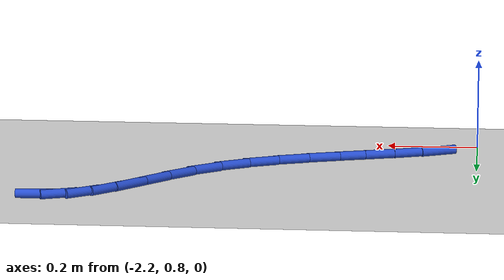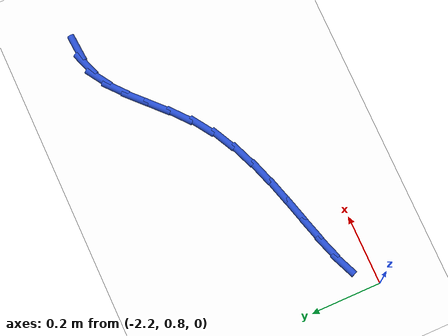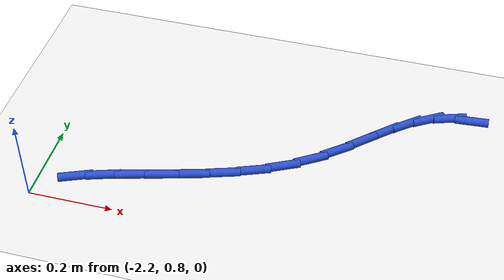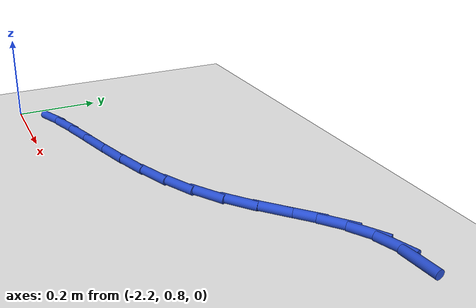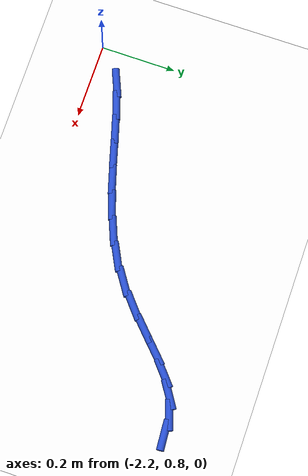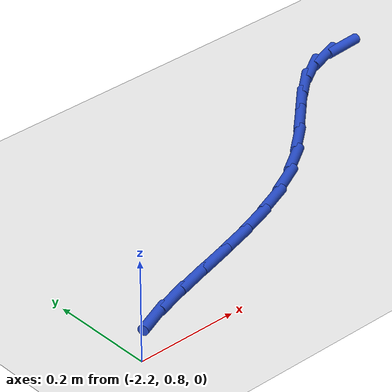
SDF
<sdf version="1.6">
 <world name="default">
  <model name="ground_plane">
   <static>1</static>
   <link name="link">
    <collision name="collision">
     <geometry><plane><normal>0 0 1</normal><size>100 100</size></plane></geometry>
     <surface><friction><ode><mu>100</mu><mu2>50</mu2></ode></friction></surface>
    </collision>
    <visual name="visual">
     <cast_shadows>0</cast_shadows>
     <geometry><plane><normal>0 0 1</normal><size>100 100</size></plane></geometry>
     <material>
      <script><uri>file://media/materials/scripts/gazebo.material</uri><name>Gazebo/WhiteGlow</name></script>
     </material>
    </visual>
   </link>
  </model>
  <model name="line">
   <link name="link_30">
    <pose>-1.2675640985776069 1.2836498274218622 0.01 0 1.57 0.07085154725491648</pose>
    <collision name="collision">
     <geometry><cylinder><radius>0.01</radius><length>0.08</length></cylinder></geometry>
    </collision>
    <visual name="visual">
     <material>
      <script><name>Gazebo/Blue</name><uri>file://media/materials/scripts/gazebo.material</uri></script>
     </material>
     <geometry><cylinder><radius>0.01</radius><length>0.08</length></cylinder></geometry>
    </visual>
   </link>
   <link name="link_31">
    <pose>-1.319588341452094 1.279957649077441 0.01 0 1.57 0.3359471753485001</pose>
    <collision name="collision">
     <geometry><cylinder><radius>0.01</radius><length>0.08</length></cylinder></geometry>
    </collision>
    <visual name="visual">
     <material>
      <script><name>Gazebo/Blue</name><uri>file://media/materials/scripts/gazebo.material</uri></script>
     </material>
     <geometry><cylinder><radius>0.01</radius><length>0.08</length></cylinder></geometry>
    </visual>
   </link>
   <link name="link_32">
    <pose>-1.3688748873476457 1.2627476040577161 0.01 0 1.57 0.5686708357813681</pose>
    <collision name="collision">
     <geometry><cylinder><radius>0.01</radius><length>0.08</length></cylinder></geometry>
    </collision>
    <visual name="visual">
     <material>
      <script><name>Gazebo/Blue</name><uri>file://media/materials/scripts/gazebo.material</uri></script>
     </material>
     <geometry><cylinder><radius>0.01</radius><length>0.08</length></cylinder></geometry>
    </visual>
   </link>
   <link name="link_33">
    <pose>-1.4158507625759402 1.2327255614048152 0.01 0 1.57 0.7045740944380736</pose>
    <collision name="collision">
     <geometry><cylinder><radius>0.01</radius><length>0.08</length></cylinder></geometry>
    </collision>
    <visual name="visual">
     <material>
      <script><name>Gazebo/Blue</name><uri>file://media/materials/scripts/gazebo.material</uri></script>
     </material>
     <geometry><cylinder><radius>0.01</radius><length>0.08</length></cylinder></geometry>
    </visual>
   </link>
   <link name="link_34">
    <pose>-1.4619225278792578 1.1935582093793553 0.01 0 1.57 0.7615658787307672</pose>
    <collision name="collision">
     <geometry><cylinder><radius>0.01</radius><length>0.08</length></cylinder></geometry>
    </collision>
    <visual name="visual">
     <material>
      <script><name>Gazebo/Blue</name><uri>file://media/materials/scripts/gazebo.material</uri></script>
     </material>
     <geometry><cylinder><radius>0.01</radius><length>0.08</length></cylinder></geometry>
    </visual>
   </link>
   <link name="link_35">
    <pose>-1.5085572108657632 1.1490950082334153 0.01 0 1.57 0.7562754342936449</pose>
    <collision name="collision">
     <geometry><cylinder><radius>0.01</radius><length>0.08</length></cylinder></geometry>
    </collision>
    <visual name="visual">
     <material>
      <script><name>Gazebo/Blue</name><uri>file://media/materials/scripts/gazebo.material</uri></script>
     </material>
     <geometry><cylinder><radius>0.01</radius><length>0.08</length></cylinder></geometry>
    </visual>
   </link>
   <link name="link_36">
    <pose>-1.5572218391436183 1.1031854182190752 0.01 0 1.57 0.6951739122457233</pose>
    <collision name="collision">
     <geometry><cylinder><radius>0.01</radius><length>0.08</length></cylinder></geometry>
    </collision>
    <visual name="visual">
     <material>
      <script><name>Gazebo/Blue</name><uri>file://media/materials/scripts/gazebo.material</uri></script>
     </material>
     <geometry><cylinder><radius>0.01</radius><length>0.08</length></cylinder></geometry>
    </visual>
   </link>
   <link name="link_37">
    <pose>-1.609383440320988 1.059678899588414 0.01 0 1.57 0.5821399783219899</pose>
    <collision name="collision">
     <geometry><cylinder><radius>0.01</radius><length>0.08</length></cylinder></geometry>
    </collision>
    <visual name="visual">
     <material>
      <script><name>Gazebo/Blue</name><uri>file://media/materials/scripts/gazebo.material</uri></script>
     </material>
     <geometry><cylinder><radius>0.01</radius><length>0.08</length></cylinder></geometry>
    </visual>
   </link>
   <link name="link_38">
    <pose>-1.6663687277115582 1.0221693996456156 0.01 0 1.57 0.46574459373892546</pose>
    <collision name="collision">
     <geometry><cylinder><radius>0.01</radius><length>0.08</length></cylinder></geometry>
    </collision>
    <visual name="visual">
     <material>
      <script><name>Gazebo/Blue</name><uri>file://media/materials/scripts/gazebo.material</uri></script>
     </material>
     <geometry><cylinder><radius>0.01</radius><length>0.08</length></cylinder></geometry>
    </visual>
   </link>
   <link name="link_39">
    <pose>-1.7278625958742477 0.9912611065152407 0.01 0 1.57 0.3777263086328981</pose>
    <collision name="collision">
     <geometry><cylinder><radius>0.01</radius><length>0.08</length></cylinder></geometry>
    </collision>
    <visual name="visual">
     <material>
      <script><name>Gazebo/Blue</name><uri>file://media/materials/scripts/gazebo.material</uri></script>
     </material>
     <geometry><cylinder><radius>0.01</radius><length>0.08</length></cylinder></geometry>
    </visual>
   </link>
   <link name="link_40">
    <pose>-1.7924856151770943 0.9656200692851692 0.01 0 1.57 0.31661750195074645</pose>
    <collision name="collision">
     <geometry><cylinder><radius>0.01</radius><length>0.08</length></cylinder></geometry>
    </collision>
    <visual name="visual">
     <material>
      <script><name>Gazebo/Blue</name><uri>file://media/materials/scripts/gazebo.material</uri></script>
     </material>
     <geometry><cylinder><radius>0.01</radius><length>0.08</length></cylinder></geometry>
    </visual>
   </link>
   <link name="link_41">
    <pose>-1.858840387331107 0.9438796160397314 0.01 0 1.57 0.28041259467490665</pose>
    <collision name="collision">
     <geometry><cylinder><radius>0.01</radius><length>0.08</length></cylinder></geometry>
    </collision>
    <visual name="visual">
     <material>
      <script><name>Gazebo/Blue</name><uri>file://media/materials/scripts/gazebo.material</uri></script>
     </material>
     <geometry><cylinder><radius>0.01</radius><length>0.08</length></cylinder></geometry>
    </visual>
   </link>
   <link name="link_42">
    <pose>-1.925529514047294 0.9246730748632576 0.01 0 1.57 0.2682546916311831</pose>
    <collision name="collision">
     <geometry><cylinder><radius>0.01</radius><length>0.08</length></cylinder></geometry>
    </collision>
    <visual name="visual">
     <material>
      <script><name>Gazebo/Blue</name><uri>file://media/materials/scripts/gazebo.material</uri></script>
     </material>
     <geometry><cylinder><radius>0.01</radius><length>0.08</length></cylinder></geometry>
    </visual>
   </link>
   <link name="link_43">
    <pose>-1.991155597036664 0.9066337738400773 0.01 0 1.57 0.28109894987766615</pose>
    <collision name="collision">
     <geometry><cylinder><radius>0.01</radius><length>0.08</length></cylinder></geometry>
    </collision>
    <visual name="visual">
     <material>
      <script><name>Gazebo/Blue</name><uri>file://media/materials/scripts/gazebo.material</uri></script>
     </material>
     <geometry><cylinder><radius>0.01</radius><length>0.08</length></cylinder></geometry>
    </visual>
   </link>
   <link name="link_44">
    <pose>-2.0543212380102234 0.8883950410545205 0.01 0 1.57 0.322290228003805</pose>
    <collision name="collision">
     <geometry><cylinder><radius>0.01</radius><length>0.08</length></cylinder></geometry>
    </collision>
    <visual name="visual">
     <material>
      <script><name>Gazebo/Blue</name><uri>file://media/materials/scripts/gazebo.material</uri></script>
     </material>
     <geometry><cylinder><radius>0.01</radius><length>0.08</length></cylinder></geometry>
    </visual>
   </link>
   <link name="link_45">
    <pose>-2.1136290386789818 0.8685902045909168 0.01 0 1.57 0.39818671265477323</pose>
    <collision name="collision">
     <geometry><cylinder><radius>0.01</radius><length>0.08</length></cylinder></geometry>
    </collision>
    <visual name="visual">
     <material>
      <script><name>Gazebo/Blue</name><uri>file://media/materials/scripts/gazebo.material</uri></script>
     </material>
     <geometry><cylinder><radius>0.01</radius><length>0.08</length></cylinder></geometry>
    </visual>
   </link>
  </model>
 </world>
</sdf>
